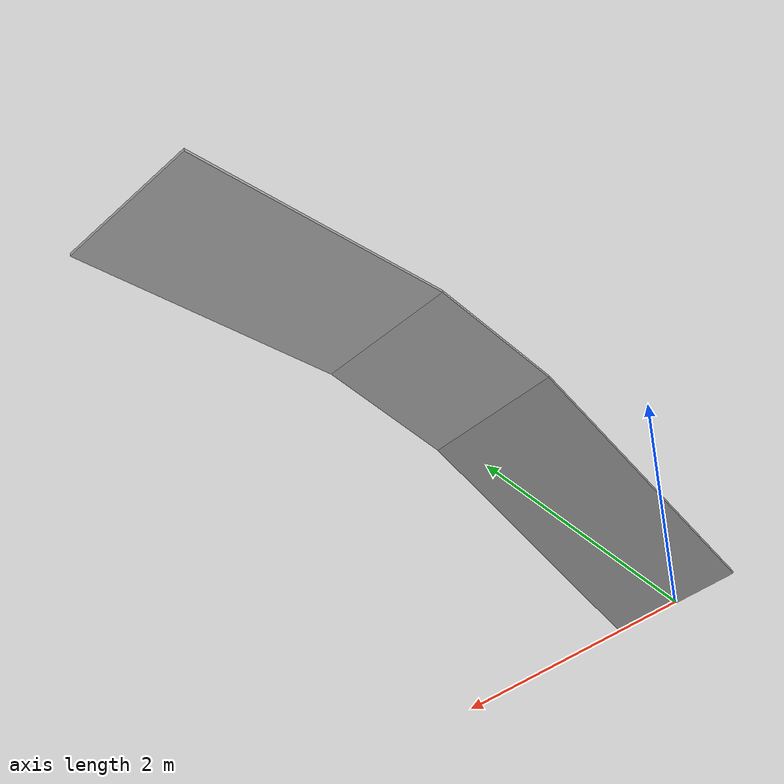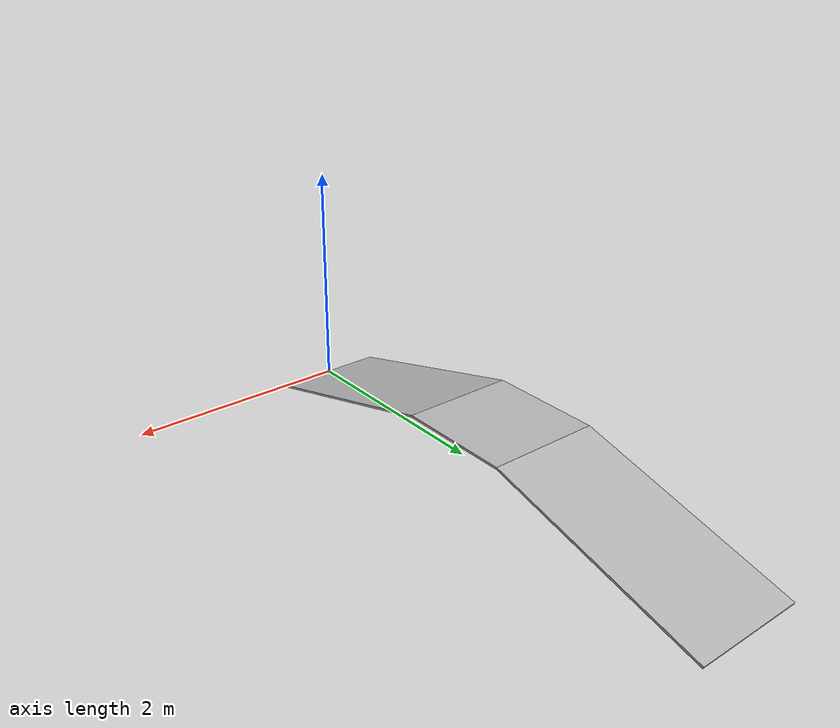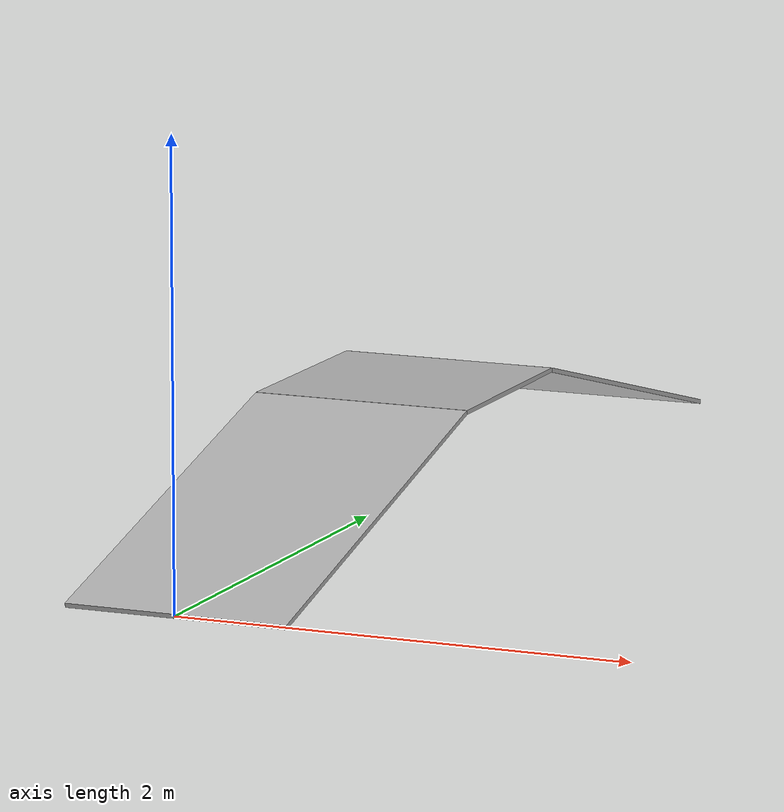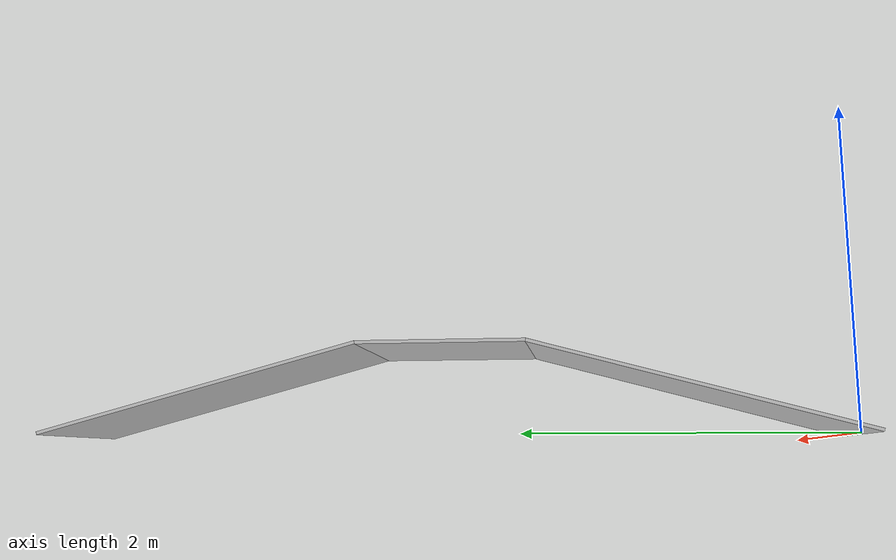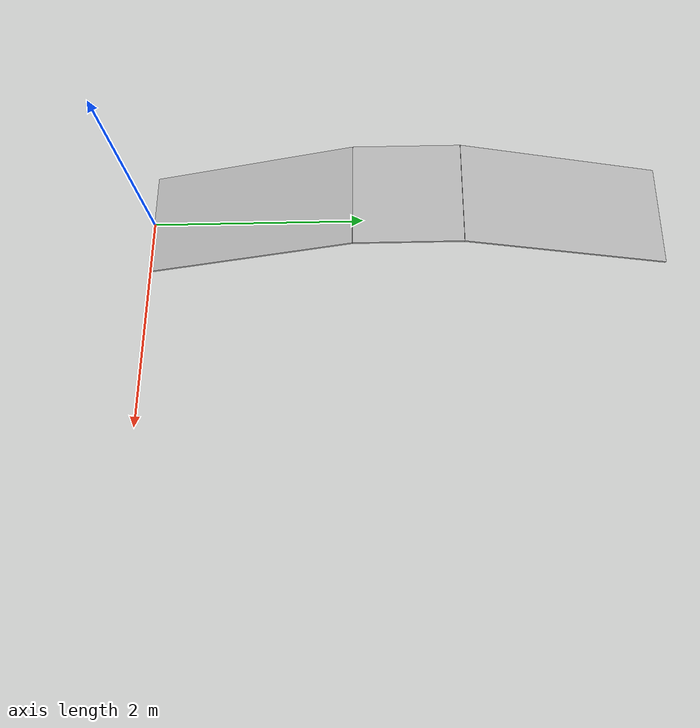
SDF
<?xml version="1.0" ?>
<sdf version="1.6">
  <model name="double_ramp">
    <static>true</static>
    <link name="up_ramp">
      <pose>0 0.9659258262890683 0.25881904510252074 0.2617993877991494 0 0</pose>
      <collision name="collision">
        <geometry>
          <box>
            <size>1.0 2.0 0.02</size>
          </box>
        </geometry>
      </collision>
      <visual name="visual">
        <geometry>
          <box>
            <size>1.0 2.0 0.02</size>
          </box>
        </geometry>
        <material>
          <script>
            <uri>file://media/materials/scripts/gazebo.material</uri>
            <name>Gazebo/Metal</name>
          </script>
          <ambient>0.7 0.7 0.7 1</ambient>
          <diffuse>0.7 0.7 0.7 1</diffuse>
          <specular>0.8 0.8 0.8 1</specular>
        </material>
      </visual>
    </link>
    <link name="platform">
      <pose>0 2.4318516525781364 0.5176380902050415 0 0 0</pose>
      <collision name="collision">
        <geometry>
          <box>
            <size>1.0 1.0 0.02</size>
          </box>
        </geometry>
      </collision>
      <visual name="visual">
        <geometry>
          <box>
            <size>1.0 1.0 0.02</size>
          </box>
        </geometry>
        <material>
          <script>
            <uri>file://media/materials/scripts/gazebo.material</uri>
            <name>Gazebo/Metal</name>
          </script>
          <ambient>0.7 0.7 0.7 1</ambient>
          <diffuse>0.7 0.7 0.7 1</diffuse>
          <specular>0.8 0.8 0.8 1</specular>
        </material>
      </visual>
    </link>
    <link name="down_ramp">
      <pose>0 3.8977774788672046 0.25881904510252074 -0.2617993877991494 0 0</pose>
      <collision name="collision">
        <geometry>
          <box>
            <size>1.0 2.0 0.02</size>
          </box>
        </geometry>
      </collision>
      <visual name="visual">
        <geometry>
          <box>
            <size>1.0 2.0 0.02</size>
          </box>
        </geometry>
        <material>
          <script>
            <uri>file://media/materials/scripts/gazebo.material</uri>
            <name>Gazebo/Metal</name>
          </script>
          <ambient>0.7 0.7 0.7 1</ambient>
          <diffuse>0.7 0.7 0.7 1</diffuse>
          <specular>0.8 0.8 0.8 1</specular>
        </material>
      </visual>
    </link>
  </model>
</sdf>
